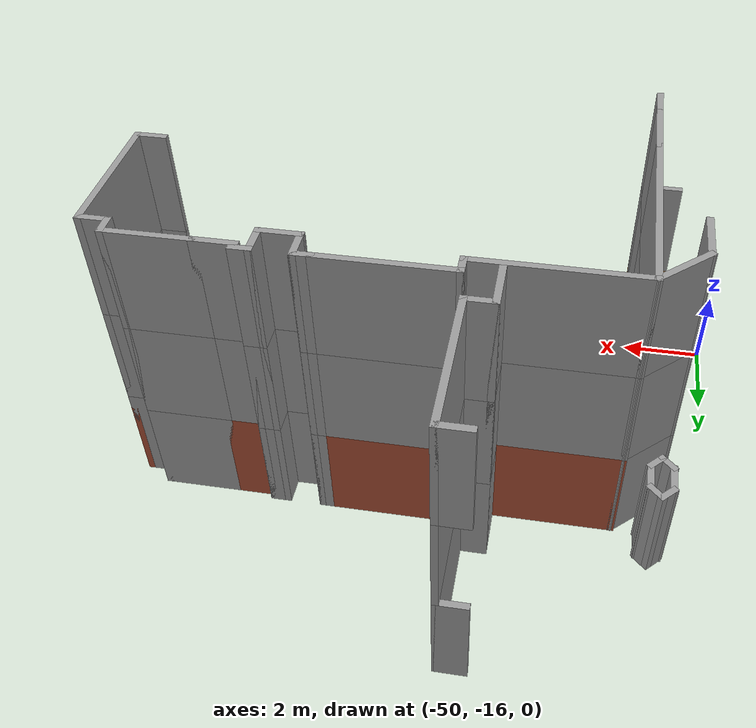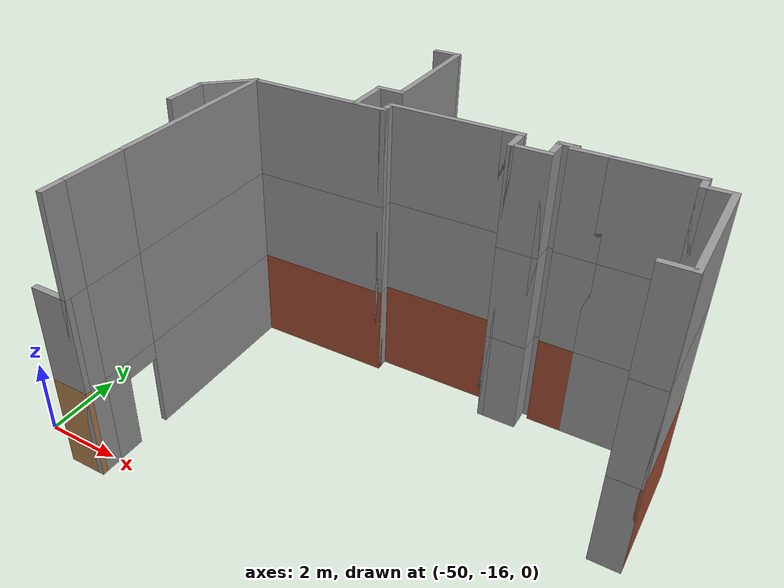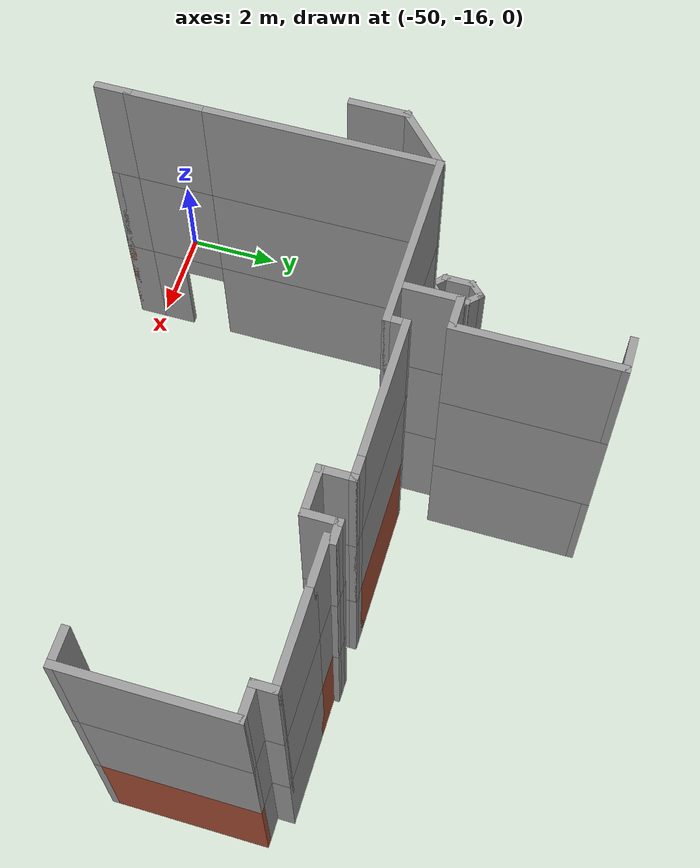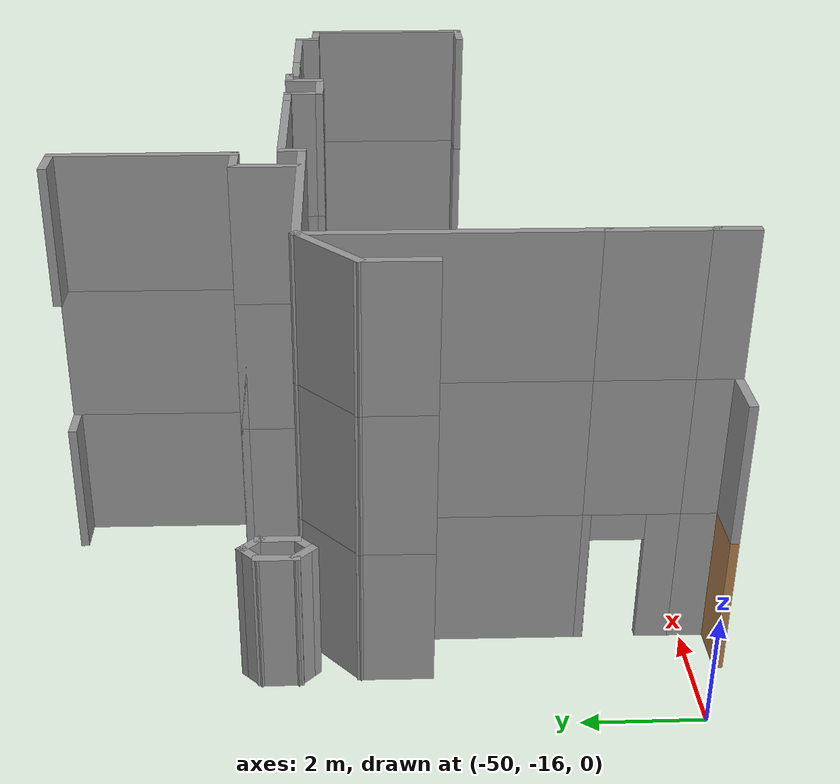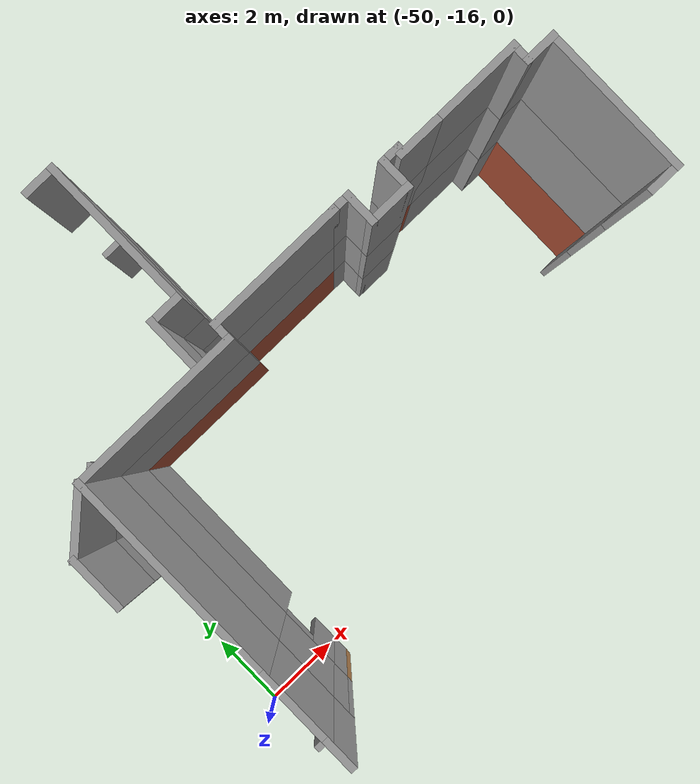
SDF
<sdf version="1.7">
 <model name="mapagazebo">
  <pose>-4.67869 9.01252 0 0 -0 0</pose>
  <link name="Wall_0">
   <collision name="Wall_0_Collision">
    <geometry><box><size>1 0.15 2.5</size></box></geometry>
    <pose>0 0 1.25 0 -0 0</pose>
   </collision>
   <visual name="Wall_0_Visual">
    <pose>0 0 1.25 0 -0 0</pose>
    <geometry><box><size>1 0.15 2.5</size></box></geometry>
    <material>
     <script><uri>file://media/materials/scripts/gazebo.material</uri><name>Gazebo/Bricks</name></script>
     <ambient>1 1 1 1</ambient>
    </material>
    <meta><layer>0</layer></meta>
   </visual>
   <pose>-34.7974 -18.4547 0 0 -0 0</pose>
  </link>
  <link name="Wall_1">
   <collision name="Wall_1_Collision">
    <geometry><box><size>2 0.15 2.5</size></box></geometry>
    <pose>0 0 1.25 0 -0 0</pose>
   </collision>
   <visual name="Wall_1_Visual">
    <pose>0 0 1.25 0 -0 0</pose>
    <geometry><box><size>2 0.15 2.5</size></box></geometry>
    <material>
     <script><uri>file://media/materials/scripts/gazebo.material</uri><name>Gazebo/Grey</name></script>
     <ambient>1 1 1 1</ambient>
    </material>
    <meta><layer>0</layer></meta>
   </visual>
   <pose>-33.4474 -18.4547 0 0 -0 0</pose>
  </link>
  <link name="Wall_138">
   <collision name="Wall_138_Collision">
    <geometry><box><size>1.25 0.15 2.5</size></box></geometry>
    <pose>0 0 1.25 0 -0 0</pose>
   </collision>
   <visual name="Wall_138_Visual">
    <pose>0 0 1.25 0 -0 0</pose>
    <geometry><box><size>1.25 0.15 2.5</size></box></geometry>
    <material>
     <script><uri>file://media/materials/scripts/gazebo.material</uri><name>Gazebo/Grey</name></script>
     <ambient>1 1 1 1</ambient>
    </material>
    <meta><layer>0</layer></meta>
   </visual>
   <pose>-40.3346 -18.1065 0 0 -0 1.5708</pose>
  </link>
  <link name="Wall_139">
   <collision name="Wall_139_Collision">
    <geometry><box><size>0.75 0.15 2.5</size></box></geometry>
    <pose>0 0 1.25 0 -0 0</pose>
   </collision>
   <visual name="Wall_139_Visual">
    <pose>0 0 1.25 0 -0 0</pose>
    <geometry><box><size>0.75 0.15 2.5</size></box></geometry>
    <material>
     <script><uri>file://media/materials/scripts/gazebo.material</uri><name>Gazebo/Grey</name></script>
     <ambient>1 1 1 1</ambient>
    </material>
    <meta><layer>0</layer></meta>
   </visual>
   <pose>-40.0346 -17.5565 0 0 -0 0</pose>
  </link>
  <link name="Wall_1392">
   <collision name="Wall_1392_Collision">
    <geometry><box><size>1 0.15 2.5</size></box></geometry>
    <pose>0 0 1.25 0 -0 0</pose>
   </collision>
   <visual name="Wall_1392_Visual">
    <pose>0 0 1.25 0 -0 0</pose>
    <geometry><box><size>1 0.15 2.5</size></box></geometry>
    <material>
     <script><uri>file://media/materials/scripts/gazebo.material</uri><name>Gazebo/Grey</name></script>
     <ambient>1 1 1 1</ambient>
    </material>
    <meta><layer>2</layer></meta>
   </visual>
   <pose>-34.7974 -18.4547 5 0 -0 0</pose>
  </link>
  <link name="Wall_1393">
   <collision name="Wall_1393_Collision">
    <geometry><box><size>2 0.15 2.5</size></box></geometry>
    <pose>0 0 1.25 0 -0 0</pose>
   </collision>
   <visual name="Wall_1393_Visual">
    <pose>0 0 1.25 0 -0 0</pose>
    <geometry><box><size>2 0.15 2.5</size></box></geometry>
    <material>
     <script><uri>file://media/materials/scripts/gazebo.material</uri><name>Gazebo/Grey</name></script>
     <ambient>1 1 1 1</ambient>
    </material>
    <meta><layer>2</layer></meta>
   </visual>
   <pose>-33.4474 -18.4547 5 0 -0 0</pose>
  </link>
  <link name="Wall_1394">
   <collision name="Wall_1394_Collision">
    <geometry><box><size>0.5 0.15 2.5</size></box></geometry>
    <pose>0 0 1.25 0 -0 0</pose>
   </collision>
   <visual name="Wall_1394_Visual">
    <pose>0 0 1.25 0 -0 0</pose>
    <geometry><box><size>0.5 0.15 2.5</size></box></geometry>
    <material>
     <script><uri>file://media/materials/scripts/gazebo.material</uri><name>Gazebo/Grey</name></script>
     <ambient>1 1 1 1</ambient>
    </material>
    <meta><layer>2</layer></meta>
   </visual>
   <pose>-32.5224 -18.6297 5 0 -0 -1.5708</pose>
  </link>
  <link name="Wall_1395">
   <collision name="Wall_1395_Collision">
    <geometry><box><size>0.75 0.15 2.5</size></box></geometry>
    <pose>0 0 1.25 0 -0 0</pose>
   </collision>
   <visual name="Wall_1395_Visual">
    <pose>0 0 1.25 0 -0 0</pose>
    <geometry><box><size>0.75 0.15 2.5</size></box></geometry>
    <material>
     <script><uri>file://media/materials/scripts/gazebo.material</uri><name>Gazebo/Grey</name></script>
     <ambient>1 1 1 1</ambient>
    </material>
    <meta><layer>2</layer></meta>
   </visual>
   <pose>-32.2224 -18.8047 5 0 -0 0</pose>
  </link>
  <link name="Wall_1396">
   <collision name="Wall_1396_Collision">
    <geometry><box><size>3.25 0.15 2.5</size></box></geometry>
    <pose>0 0 1.25 0 -0 0</pose>
   </collision>
   <visual name="Wall_1396_Visual">
    <pose>0 0 1.25 0 -0 0</pose>
    <geometry><box><size>3.25 0.15 2.5</size></box></geometry>
    <material>
     <script><uri>file://media/materials/scripts/gazebo.material</uri><name>Gazebo/Grey</name></script>
     <ambient>1 1 1 1</ambient>
    </material>
    <meta><layer>2</layer></meta>
   </visual>
   <pose>-31.9224 -20.3547 5 0 -0 -1.5708</pose>
  </link>
  <link name="Wall_1397">
   <collision name="Wall_1397_Collision">
    <geometry><box><size>0.75 0.15 2.5</size></box></geometry>
    <pose>0 0 1.25 0 -0 0</pose>
   </collision>
   <visual name="Wall_1397_Visual">
    <pose>0 0 1.25 0 -0 0</pose>
    <geometry><box><size>0.75 0.15 2.5</size></box></geometry>
    <material>
     <script><uri>file://media/materials/scripts/gazebo.material</uri><name>Gazebo/Grey</name></script>
     <ambient>1 1 1 1</ambient>
    </material>
    <meta><layer>2</layer></meta>
   </visual>
   <pose>-32.2224 -21.9047 5 0 -0 3.14159</pose>
  </link>
  <link name="Wall_140">
   <collision name="Wall_140_Collision">
    <geometry><box><size>3.25 0.15 2.5</size></box></geometry>
    <pose>0 0 1.25 0 -0 0</pose>
   </collision>
   <visual name="Wall_140_Visual">
    <pose>0 0 1.25 0 -0 0</pose>
    <geometry><box><size>3.25 0.15 2.5</size></box></geometry>
    <material>
     <script><uri>file://media/materials/scripts/gazebo.material</uri><name>Gazebo/Grey</name></script>
     <ambient>1 1 1 1</ambient>
    </material>
    <meta><layer>0</layer></meta>
   </visual>
   <pose>-39.7346 -16.0065 0 0 -0 1.5708</pose>
  </link>
  <link name="Wall_1417">
   <collision name="Wall_1417_Collision">
    <geometry><box><size>0.75 0.15 2.5</size></box></geometry>
    <pose>0 0 1.25 0 -0 0</pose>
   </collision>
   <visual name="Wall_1417_Visual">
    <pose>0 0 1.25 0 -0 0</pose>
    <geometry><box><size>0.75 0.15 2.5</size></box></geometry>
    <material>
     <script><uri>file://media/materials/scripts/gazebo.material</uri><name>Gazebo/Grey</name></script>
     <ambient>1 1 1 1</ambient>
    </material>
    <meta><layer>2</layer></meta>
   </visual>
   <pose>-43.1799 -25.1864 5 0 -0 1.5708</pose>
  </link>
  <link name="Wall_1418">
   <collision name="Wall_1418_Collision">
    <geometry><box><size>1.75 0.15 2.5</size></box></geometry>
    <pose>0 0 1.25 0 -0 0</pose>
   </collision>
   <visual name="Wall_1418_Visual">
    <pose>0 0 1.25 0 -0 0</pose>
    <geometry><box><size>1.75 0.15 2.5</size></box></geometry>
    <material>
     <script><uri>file://media/materials/scripts/gazebo.material</uri><name>Gazebo/Grey</name></script>
     <ambient>1 1 1 1</ambient>
    </material>
    <meta><layer>2</layer></meta>
   </visual>
   <pose>-43.1799 -24.0864 5 0 -0 1.5708</pose>
  </link>
  <link name="Wall_1419">
   <collision name="Wall_1419_Collision">
    <geometry><box><size>4.75 0.15 2.5</size></box></geometry>
    <pose>0 0 1.25 0 -0 0</pose>
   </collision>
   <visual name="Wall_1419_Visual">
    <pose>0 0 1.25 0 -0 0</pose>
    <geometry><box><size>4.75 0.15 2.5</size></box></geometry>
    <material>
     <script><uri>file://media/materials/scripts/gazebo.material</uri><name>Gazebo/Grey</name></script>
     <ambient>1 1 1 1</ambient>
    </material>
    <meta><layer>2</layer></meta>
   </visual>
   <pose>-43.1799 -20.9864 5 0 -0 1.5708</pose>
  </link>
  <link name="Wall_1420">
   <collision name="Wall_1420_Collision">
    <geometry><box><size>3.75 0.15 2.5</size></box></geometry>
    <pose>0 0 1.25 0 -0 0</pose>
   </collision>
   <visual name="Wall_1420_Visual">
    <pose>0 0 1.25 0 -0 0</pose>
    <geometry><box><size>3.75 0.15 2.5</size></box></geometry>
    <material>
     <script><uri>file://media/materials/scripts/gazebo.material</uri><name>Gazebo/Grey</name></script>
     <ambient>1 1 1 1</ambient>
    </material>
    <meta><layer>2</layer></meta>
   </visual>
   <pose>-41.3799 -18.6864 5 0 -0 0</pose>
  </link>
  <link name="Wall_1421">
   <collision name="Wall_1421_Collision">
    <geometry><box><size>0.5 0.15 2.5</size></box></geometry>
    <pose>0 0 1.25 0 -0 0</pose>
   </collision>
   <visual name="Wall_1421_Visual">
    <pose>0 0 1.25 0 -0 0</pose>
    <geometry><box><size>0.5 0.15 2.5</size></box></geometry>
    <material>
     <script><uri>file://media/materials/scripts/gazebo.material</uri><name>Gazebo/Grey</name></script>
     <ambient>1 1 1 1</ambient>
    </material>
    <meta><layer>2</layer></meta>
   </visual>
   <pose>-39.5799 -18.5114 5 0 -0 1.5708</pose>
  </link>
  <link name="Wall_1422">
   <collision name="Wall_1422_Collision">
    <geometry><box><size>3 0.15 2.5</size></box></geometry>
    <pose>0 0 1.25 0 -0 0</pose>
   </collision>
   <visual name="Wall_1422_Visual">
    <pose>0 0 1.25 0 -0 0</pose>
    <geometry><box><size>3 0.15 2.5</size></box></geometry>
    <material>
     <script><uri>file://media/materials/scripts/gazebo.material</uri><name>Gazebo/Grey</name></script>
     <ambient>1 1 1 1</ambient>
    </material>
    <meta><layer>2</layer></meta>
   </visual>
   <pose>-38.1549 -18.3364 5 0 -0 0</pose>
  </link>
  <link name="Wall_1423">
   <collision name="Wall_1423_Collision">
    <geometry><box><size>0.5 0.15 2.5</size></box></geometry>
    <pose>0 0 1.25 0 -0 0</pose>
   </collision>
   <visual name="Wall_1423_Visual">
    <pose>0 0 1.25 0 -0 0</pose>
    <geometry><box><size>0.5 0.15 2.5</size></box></geometry>
    <material>
     <script><uri>file://media/materials/scripts/gazebo.material</uri><name>Gazebo/Grey</name></script>
     <ambient>1 1 1 1</ambient>
    </material>
    <meta><layer>2</layer></meta>
   </visual>
   <pose>-36.5549 -18.3364 5 0 -0 0</pose>
  </link>
  <link name="Wall_1424">
   <collision name="Wall_1424_Collision">
    <geometry><box><size>0.75 0.15 2.5</size></box></geometry>
    <pose>0 0 1.25 0 -0 0</pose>
   </collision>
   <visual name="Wall_1424_Visual">
    <pose>0 0 1.25 0 -0 0</pose>
    <geometry><box><size>0.75 0.15 2.5</size></box></geometry>
    <material>
     <script><uri>file://media/materials/scripts/gazebo.material</uri><name>Gazebo/Grey</name></script>
     <ambient>1 1 1 1</ambient>
    </material>
    <meta><layer>2</layer></meta>
   </visual>
   <pose>-36.3799 -18.6364 5 0 -0 -1.5708</pose>
  </link>
  <link name="Wall_1425">
   <collision name="Wall_1425_Collision">
    <geometry><box><size>1 0.15 2.5</size></box></geometry>
    <pose>0 0 1.25 0 -0 0</pose>
   </collision>
   <visual name="Wall_1425_Visual">
    <pose>0 0 1.25 0 -0 0</pose>
    <geometry><box><size>1 0.15 2.5</size></box></geometry>
    <material>
     <script><uri>file://media/materials/scripts/gazebo.material</uri><name>Gazebo/Grey</name></script>
     <ambient>1 1 1 1</ambient>
    </material>
    <meta><layer>2</layer></meta>
   </visual>
   <pose>-35.9549 -18.9364 5 0 -0 0</pose>
  </link>
  <link name="Wall_1426">
   <collision name="Wall_1426_Collision">
    <geometry><box><size>0.75 0.15 2.5</size></box></geometry>
    <pose>0 0 1.25 0 -0 0</pose>
   </collision>
   <visual name="Wall_1426_Visual">
    <pose>0 0 1.25 0 -0 0</pose>
    <geometry><box><size>0.75 0.15 2.5</size></box></geometry>
    <material>
     <script><uri>file://media/materials/scripts/gazebo.material</uri><name>Gazebo/Grey</name></script>
     <ambient>1 1 1 1</ambient>
    </material>
    <meta><layer>2</layer></meta>
   </visual>
   <pose>-35.5299 -18.6364 5 0 -0 1.5708</pose>
  </link>
  <link name="Wall_1427">
   <collision name="Wall_1427_Collision">
    <geometry><box><size>0.5 0.15 2.5</size></box></geometry>
    <pose>0 0 1.25 0 -0 0</pose>
   </collision>
   <visual name="Wall_1427_Visual">
    <pose>0 0 1.25 0 -0 0</pose>
    <geometry><box><size>0.5 0.15 2.5</size></box></geometry>
    <material>
     <script><uri>file://media/materials/scripts/gazebo.material</uri><name>Gazebo/Grey</name></script>
     <ambient>1 1 1 1</ambient>
    </material>
    <meta><layer>2</layer></meta>
   </visual>
   <pose>-35.3549 -18.3364 5 0 -0 0</pose>
  </link>
  <link name="Wall_1428">
   <collision name="Wall_1428_Collision">
    <geometry><box><size>0.15 0.15 2.5</size></box></geometry>
    <pose>0 0 1.25 0 -0 0</pose>
   </collision>
   <visual name="Wall_1428_Visual">
    <pose>0 0 1.25 0 -0 0</pose>
    <geometry><box><size>0.15 0.15 2.5</size></box></geometry>
    <material>
     <script><uri>file://media/materials/scripts/gazebo.material</uri><name>Gazebo/Grey</name></script>
     <ambient>1 1 1 1</ambient>
    </material>
    <meta><layer>2</layer></meta>
   </visual>
   <pose>-35.1799 -18.3364 5 0 -0 0</pose>
  </link>
  <link name="Wall_143">
   <collision name="Wall_143_Collision">
    <geometry><box><size>0.75 0.15 2.5</size></box></geometry>
    <pose>0 0 1.25 0 -0 0</pose>
   </collision>
   <visual name="Wall_143_Visual">
    <pose>0 0 1.25 0 -0 0</pose>
    <geometry><box><size>0.75 0.15 2.5</size></box></geometry>
    <material>
     <script><uri>file://media/materials/scripts/gazebo.material</uri><name>Gazebo/Grey</name></script>
     <ambient>1 1 1 1</ambient>
    </material>
    <meta><layer>0</layer></meta>
   </visual>
   <pose>-40.0346 -14.4565 0 0 -0 3.14159</pose>
  </link>
  <link name="Wall_1432">
   <collision name="Wall_1432_Collision">
    <geometry><box><size>1.25 0.15 2.5</size></box></geometry>
    <pose>0 0 1.25 0 -0 0</pose>
   </collision>
   <visual name="Wall_1432_Visual">
    <pose>0 0 1.25 0 -0 0</pose>
    <geometry><box><size>1.25 0.15 2.5</size></box></geometry>
    <material>
     <script><uri>file://media/materials/scripts/gazebo.material</uri><name>Gazebo/Grey</name></script>
     <ambient>1 1 1 1</ambient>
    </material>
    <meta><layer>2</layer></meta>
   </visual>
   <pose>-44.1623 -20.1413 5 0 -0 1.5708</pose>
  </link>
  <link name="Wall_1433">
   <collision name="Wall_1433_Collision">
    <geometry><box><size>1.48568 0.15 2.5</size></box></geometry>
    <pose>0 0 1.25 0 -0 0</pose>
   </collision>
   <visual name="Wall_1433_Visual">
    <pose>0 0 1.25 0 -0 0</pose>
    <geometry><box><size>1.48568 0.15 2.5</size></box></geometry>
    <material>
     <script><uri>file://media/materials/scripts/gazebo.material</uri><name>Gazebo/Grey</name></script>
     <ambient>1 1 1 1</ambient>
    </material>
    <meta><layer>2</layer></meta>
   </visual>
   <pose>-43.6711 -19.1389 5 0 -0 0.744352</pose>
  </link>
  <link name="Wall_1502">
   <collision name="Wall_1502_Collision">
    <geometry><box><size>1.25 0.15 2.5</size></box></geometry>
    <pose>0 0 1.25 0 -0 0</pose>
   </collision>
   <visual name="Wall_1502_Visual">
    <pose>0 0 1.25 0 -0 0</pose>
    <geometry><box><size>1.25 0.15 2.5</size></box></geometry>
    <material>
     <script><uri>file://media/materials/scripts/gazebo.material</uri><name>Gazebo/Grey</name></script>
     <ambient>1 1 1 1</ambient>
    </material>
    <meta><layer>2</layer></meta>
   </visual>
   <pose>-40.3346 -18.1065 5 0 -0 1.5708</pose>
  </link>
  <link name="Wall_1503">
   <collision name="Wall_1503_Collision">
    <geometry><box><size>0.75 0.15 2.5</size></box></geometry>
    <pose>0 0 1.25 0 -0 0</pose>
   </collision>
   <visual name="Wall_1503_Visual">
    <pose>0 0 1.25 0 -0 0</pose>
    <geometry><box><size>0.75 0.15 2.5</size></box></geometry>
    <material>
     <script><uri>file://media/materials/scripts/gazebo.material</uri><name>Gazebo/Grey</name></script>
     <ambient>1 1 1 1</ambient>
    </material>
    <meta><layer>2</layer></meta>
   </visual>
   <pose>-40.0346 -17.5565 5 0 -0 0</pose>
  </link>
  <link name="Wall_1504">
   <collision name="Wall_1504_Collision">
    <geometry><box><size>3.25 0.15 2.5</size></box></geometry>
    <pose>0 0 1.25 0 -0 0</pose>
   </collision>
   <visual name="Wall_1504_Visual">
    <pose>0 0 1.25 0 -0 0</pose>
    <geometry><box><size>3.25 0.15 2.5</size></box></geometry>
    <material>
     <script><uri>file://media/materials/scripts/gazebo.material</uri><name>Gazebo/Grey</name></script>
     <ambient>1 1 1 1</ambient>
    </material>
    <meta><layer>2</layer></meta>
   </visual>
   <pose>-39.7346 -16.0065 5 0 -0 1.5708</pose>
  </link>
  <link name="Wall_1505">
   <collision name="Wall_1505_Collision">
    <geometry><box><size>0.75 0.15 2.5</size></box></geometry>
    <pose>0 0 1.25 0 -0 0</pose>
   </collision>
   <visual name="Wall_1505_Visual">
    <pose>0 0 1.25 0 -0 0</pose>
    <geometry><box><size>0.75 0.15 2.5</size></box></geometry>
    <material>
     <script><uri>file://media/materials/scripts/gazebo.material</uri><name>Gazebo/Grey</name></script>
     <ambient>1 1 1 1</ambient>
    </material>
    <meta><layer>2</layer></meta>
   </visual>
   <pose>-40.0346 -14.4565 5 0 -0 3.14159</pose>
  </link>
  <link name="Wall_2">
   <collision name="Wall_2_Collision">
    <geometry><box><size>0.5 0.15 2.5</size></box></geometry>
    <pose>0 0 1.25 0 -0 0</pose>
   </collision>
   <visual name="Wall_2_Visual">
    <pose>0 0 1.25 0 -0 0</pose>
    <geometry><box><size>0.5 0.15 2.5</size></box></geometry>
    <material>
     <script><uri>file://media/materials/scripts/gazebo.material</uri><name>Gazebo/Grey</name></script>
     <ambient>1 1 1 1</ambient>
    </material>
    <meta><layer>0</layer></meta>
   </visual>
   <pose>-32.5224 -18.6297 0 0 -0 -1.5708</pose>
  </link>
  <link name="Wall_2169">
   <collision name="Wall_2169_Collision">
    <geometry><box><size>0.75 0.15 2.5</size></box></geometry>
    <pose>0 0 1.25 0 -0 0</pose>
   </collision>
   <visual name="Wall_2169_Visual">
    <pose>0 0 1.25 0 -0 0</pose>
    <geometry><box><size>0.75 0.15 2.5</size></box></geometry>
    <material>
     <script><uri>file://media/materials/scripts/gazebo.material</uri><name>Gazebo/Grey</name></script>
     <ambient>1 1 1 1</ambient>
    </material>
    <meta><layer>0</layer></meta>
   </visual>
   <pose>-44.2676 -18.2769 0 0 -0 1.5708</pose>
  </link>
  <link name="Wall_2170">
   <collision name="Wall_2170_Collision">
    <geometry><box><size>0.5 0.15 2.5</size></box></geometry>
    <pose>0 0 1.25 0 -0 0</pose>
   </collision>
   <visual name="Wall_2170_Visual">
    <pose>0 0 1.25 0 -0 0</pose>
    <geometry><box><size>0.5 0.15 2.5</size></box></geometry>
    <material>
     <script><uri>file://media/materials/scripts/gazebo.material</uri><name>Gazebo/Grey</name></script>
     <ambient>1 1 1 1</ambient>
    </material>
    <meta><layer>0</layer></meta>
   </visual>
   <pose>-44.1438 -17.8532 0 0 -0 0.785398</pose>
  </link>
  <link name="Wall_2171">
   <collision name="Wall_2171_Collision">
    <geometry><box><size>0.5 0.15 2.5</size></box></geometry>
    <pose>0 0 1.25 0 -0 0</pose>
   </collision>
   <visual name="Wall_2171_Visual">
    <pose>0 0 1.25 0 -0 0</pose>
    <geometry><box><size>0.5 0.15 2.5</size></box></geometry>
    <material>
     <script><uri>file://media/materials/scripts/gazebo.material</uri><name>Gazebo/Grey</name></script>
     <ambient>1 1 1 1</ambient>
    </material>
    <meta><layer>0</layer></meta>
   </visual>
   <pose>-43.8964 -17.8532 0 0 -0 -0.785398</pose>
  </link>
  <link name="Wall_2172">
   <collision name="Wall_2172_Collision">
    <geometry><box><size>0.75 0.15 2.5</size></box></geometry>
    <pose>0 0 1.25 0 -0 0</pose>
   </collision>
   <visual name="Wall_2172_Visual">
    <pose>0 0 1.25 0 -0 0</pose>
    <geometry><box><size>0.75 0.15 2.5</size></box></geometry>
    <material>
     <script><uri>file://media/materials/scripts/gazebo.material</uri><name>Gazebo/Grey</name></script>
     <ambient>1 1 1 1</ambient>
    </material>
    <meta><layer>0</layer></meta>
   </visual>
   <pose>-43.7726 -18.2769 0 0 -0 -1.5708</pose>
  </link>
  <link name="Wall_2173">
   <collision name="Wall_2173_Collision">
    <geometry><box><size>0.5 0.15 2.5</size></box></geometry>
    <pose>0 0 1.25 0 -0 0</pose>
   </collision>
   <visual name="Wall_2173_Visual">
    <pose>0 0 1.25 0 -0 0</pose>
    <geometry><box><size>0.5 0.15 2.5</size></box></geometry>
    <material>
     <script><uri>file://media/materials/scripts/gazebo.material</uri><name>Gazebo/Grey</name></script>
     <ambient>1 1 1 1</ambient>
    </material>
    <meta><layer>0</layer></meta>
   </visual>
   <pose>-43.8964 -18.7006 0 0 -0 -2.35619</pose>
  </link>
  <link name="Wall_2174">
   <collision name="Wall_2174_Collision">
    <geometry><box><size>0.5 0.15 2.5</size></box></geometry>
    <pose>0 0 1.25 0 -0 0</pose>
   </collision>
   <visual name="Wall_2174_Visual">
    <pose>0 0 1.25 0 -0 0</pose>
    <geometry><box><size>0.5 0.15 2.5</size></box></geometry>
    <material>
     <script><uri>file://media/materials/scripts/gazebo.material</uri><name>Gazebo/Grey</name></script>
     <ambient>1 1 1 1</ambient>
    </material>
    <meta><layer>0</layer></meta>
   </visual>
   <pose>-44.1438 -18.7006 0 0 -0 2.35619</pose>
  </link>
  <link name="Wall_27">
   <collision name="Wall_27_Collision">
    <geometry><box><size>1 0.15 2.5</size></box></geometry>
    <pose>0 0 1.25 0 -0 0</pose>
   </collision>
   <visual name="Wall_27_Visual">
    <pose>0 0 1.25 0 -0 0</pose>
    <geometry><box><size>1 0.15 2.5</size></box></geometry>
    <material>
     <script><uri>file://media/materials/scripts/gazebo.material</uri><name>Gazebo/Wood</name></script>
     <ambient>1 1 1 1</ambient>
    </material>
    <meta><layer>0</layer></meta>
   </visual>
   <pose>-43.6049 -25.4864 0 0 -0 0</pose>
  </link>
  <link name="Wall_28">
   <collision name="Wall_28_Collision">
    <geometry><box><size>0.75 0.15 2.5</size></box></geometry>
    <pose>0 0 1.25 0 -0 0</pose>
   </collision>
   <visual name="Wall_28_Visual">
    <pose>0 0 1.25 0 -0 0</pose>
    <geometry><box><size>0.75 0.15 2.5</size></box></geometry>
    <material>
     <script><uri>file://media/materials/scripts/gazebo.material</uri><name>Gazebo/Grey</name></script>
     <ambient>1 1 1 1</ambient>
    </material>
    <meta><layer>0</layer></meta>
   </visual>
   <pose>-43.1799 -25.1864 0 0 -0 1.5708</pose>
  </link>
  <link name="Wall_29">
   <pose>-43.1799 -24.0864 0 0 -0 1.5708</pose>
   <visual name="Wall_29_Visual_0">
    <pose>-0.521421 0 1.25 0 -0 0</pose>
    <geometry><box><size>0.707158 0.15 2.5</size></box></geometry>
    <material>
     <script><uri>file://media/materials/scripts/gazebo.material</uri><name>Gazebo/Grey</name></script>
     <ambient>1 1 1 1</ambient>
    </material>
    <meta><layer>0</layer></meta>
   </visual>
   <collision name="Wall_29_Collision_0">
    <geometry><box><size>0.707158 0.15 2.5</size></box></geometry>
    <pose>-0.521421 0 1.25 0 -0 0</pose>
   </collision>
   <visual name="Wall_29_Visual_1">
    <pose>-0.168451 0 1.25 0 -0 0</pose>
    <geometry><box><size>0.001217 0.15 2.5</size></box></geometry>
    <material>
     <script><uri>file://media/materials/scripts/gazebo.material</uri><name>Gazebo/Grey</name></script>
     <ambient>1 1 1 1</ambient>
    </material>
    <meta><layer>0</layer></meta>
   </visual>
   <collision name="Wall_29_Collision_1">
    <geometry><box><size>0.001217 0.15 2.5</size></box></geometry>
    <pose>-0.168451 0 1.25 0 -0 0</pose>
   </collision>
   <visual name="Wall_29_Visual_2">
    <pose>0.803579 0 1.25 0 -0 0</pose>
    <geometry><box><size>0.142842 0.15 2.5</size></box></geometry>
    <material>
     <script><uri>file://media/materials/scripts/gazebo.material</uri><name>Gazebo/Grey</name></script>
     <ambient>1 1 1 1</ambient>
    </material>
    <meta><layer>0</layer></meta>
   </visual>
   <collision name="Wall_29_Collision_2">
    <geometry><box><size>0.142842 0.15 2.5</size></box></geometry>
    <pose>0.803579 0 1.25 0 -0 0</pose>
   </collision>
   <visual name="Wall_29_Visual_3">
    <pose>0.282158 0 2.25 0 -0 0</pose>
    <geometry><box><size>0.9 0.15 0.5</size></box></geometry>
    <material>
     <script><uri>file://media/materials/scripts/gazebo.material</uri><name>Gazebo/Grey</name></script>
     <ambient>1 1 1 1</ambient>
    </material>
    <meta><layer>0</layer></meta>
   </visual>
   <collision name="Wall_29_Collision_3">
    <geometry><box><size>0.9 0.15 0.5</size></box></geometry>
    <pose>0.282158 0 2.25 0 -0 0</pose>
   </collision>
   <visual name="Wall_29_Visual_4">
    <pose>0.282158 0 2.25 0 -0 0</pose>
    <geometry><box><size>0.9 0.15 0.5</size></box></geometry>
    <material>
     <script><uri>file://media/materials/scripts/gazebo.material</uri><name>Gazebo/Grey</name></script>
     <ambient>1 1 1 1</ambient>
    </material>
    <meta><layer>0</layer></meta>
   </visual>
   <collision name="Wall_29_Collision_4">
    <geometry><box><size>0.9 0.15 0.5</size></box></geometry>
    <pose>0.282158 0 2.25 0 -0 0</pose>
   </collision>
  </link>
  <link name="Wall_3">
   <collision name="Wall_3_Collision">
    <geometry><box><size>0.75 0.15 2.5</size></box></geometry>
    <pose>0 0 1.25 0 -0 0</pose>
   </collision>
   <visual name="Wall_3_Visual">
    <pose>0 0 1.25 0 -0 0</pose>
    <geometry><box><size>0.75 0.15 2.5</size></box></geometry>
    <material>
     <script><uri>file://media/materials/scripts/gazebo.material</uri><name>Gazebo/Grey</name></script>
     <ambient>1 1 1 1</ambient>
    </material>
    <meta><layer>0</layer></meta>
   </visual>
   <pose>-32.2224 -18.8047 0 0 -0 0</pose>
  </link>
  <link name="Wall_30">
   <collision name="Wall_30_Collision">
    <geometry><box><size>4.75 0.15 2.5</size></box></geometry>
    <pose>0 0 1.25 0 -0 0</pose>
   </collision>
   <visual name="Wall_30_Visual">
    <pose>0 0 1.25 0 -0 0</pose>
    <geometry><box><size>4.75 0.15 2.5</size></box></geometry>
    <material>
     <script><uri>file://media/materials/scripts/gazebo.material</uri><name>Gazebo/Grey</name></script>
     <ambient>1 1 1 1</ambient>
    </material>
    <meta><layer>0</layer></meta>
   </visual>
   <pose>-43.1799 -20.9864 0 0 -0 1.5708</pose>
  </link>
  <link name="Wall_32">
   <collision name="Wall_32_Collision">
    <geometry><box><size>3.75 0.15 2.5</size></box></geometry>
    <pose>0 0 1.25 0 -0 0</pose>
   </collision>
   <visual name="Wall_32_Visual">
    <pose>0 0 1.25 0 -0 0</pose>
    <geometry><box><size>3.75 0.15 2.5</size></box></geometry>
    <material>
     <script><uri>file://media/materials/scripts/gazebo.material</uri><name>Gazebo/Bricks</name></script>
     <ambient>1 1 1 1</ambient>
    </material>
    <meta><layer>0</layer></meta>
   </visual>
   <pose>-41.3799 -18.6864 0 0 -0 0</pose>
  </link>
  <link name="Wall_33">
   <collision name="Wall_33_Collision">
    <geometry><box><size>0.5 0.15 2.5</size></box></geometry>
    <pose>0 0 1.25 0 -0 0</pose>
   </collision>
   <visual name="Wall_33_Visual">
    <pose>0 0 1.25 0 -0 0</pose>
    <geometry><box><size>0.5 0.15 2.5</size></box></geometry>
    <material>
     <script><uri>file://media/materials/scripts/gazebo.material</uri><name>Gazebo/Grey</name></script>
     <ambient>1 1 1 1</ambient>
    </material>
    <meta><layer>0</layer></meta>
   </visual>
   <pose>-39.5799 -18.5114 0 0 -0 1.5708</pose>
  </link>
  <link name="Wall_34">
   <collision name="Wall_34_Collision">
    <geometry><box><size>3 0.15 2.5</size></box></geometry>
    <pose>0 0 1.25 0 -0 0</pose>
   </collision>
   <visual name="Wall_34_Visual">
    <pose>0 0 1.25 0 -0 0</pose>
    <geometry><box><size>3 0.15 2.5</size></box></geometry>
    <material>
     <script><uri>file://media/materials/scripts/gazebo.material</uri><name>Gazebo/Bricks</name></script>
     <ambient>1 1 1 1</ambient>
    </material>
    <meta><layer>0</layer></meta>
   </visual>
   <pose>-38.1549 -18.3364 0 0 -0 0</pose>
  </link>
  <link name="Wall_35">
   <collision name="Wall_35_Collision">
    <geometry><box><size>0.5 0.15 2.5</size></box></geometry>
    <pose>0 0 1.25 0 -0 0</pose>
   </collision>
   <visual name="Wall_35_Visual">
    <pose>0 0 1.25 0 -0 0</pose>
    <geometry><box><size>0.5 0.15 2.5</size></box></geometry>
    <material>
     <script><uri>file://media/materials/scripts/gazebo.material</uri><name>Gazebo/Grey</name></script>
     <ambient>1 1 1 1</ambient>
    </material>
    <meta><layer>0</layer></meta>
   </visual>
   <pose>-36.5549 -18.3364 0 0 -0 0</pose>
  </link>
  <link name="Wall_36">
   <collision name="Wall_36_Collision">
    <geometry><box><size>0.75 0.15 2.5</size></box></geometry>
    <pose>0 0 1.25 0 -0 0</pose>
   </collision>
   <visual name="Wall_36_Visual">
    <pose>0 0 1.25 0 -0 0</pose>
    <geometry><box><size>0.75 0.15 2.5</size></box></geometry>
    <material>
     <script><uri>file://media/materials/scripts/gazebo.material</uri><name>Gazebo/Grey</name></script>
     <ambient>1 1 1 1</ambient>
    </material>
    <meta><layer>0</layer></meta>
   </visual>
   <pose>-36.3799 -18.6364 0 0 -0 -1.5708</pose>
  </link>
  <link name="Wall_37">
   <collision name="Wall_37_Collision">
    <geometry><box><size>1 0.15 2.5</size></box></geometry>
    <pose>0 0 1.25 0 -0 0</pose>
   </collision>
   <visual name="Wall_37_Visual">
    <pose>0 0 1.25 0 -0 0</pose>
    <geometry><box><size>1 0.15 2.5</size></box></geometry>
    <material>
     <script><uri>file://media/materials/scripts/gazebo.material</uri><name>Gazebo/Grey</name></script>
     <ambient>1 1 1 1</ambient>
    </material>
    <meta><layer>0</layer></meta>
   </visual>
   <pose>-35.9549 -18.9364 0 0 -0 0</pose>
  </link>
  <link name="Wall_38">
   <collision name="Wall_38_Collision">
    <geometry><box><size>0.75 0.15 2.5</size></box></geometry>
    <pose>0 0 1.25 0 -0 0</pose>
   </collision>
   <visual name="Wall_38_Visual">
    <pose>0 0 1.25 0 -0 0</pose>
    <geometry><box><size>0.75 0.15 2.5</size></box></geometry>
    <material>
     <script><uri>file://media/materials/scripts/gazebo.material</uri><name>Gazebo/Grey</name></script>
     <ambient>1 1 1 1</ambient>
    </material>
    <meta><layer>0</layer></meta>
   </visual>
   <pose>-35.5299 -18.6364 0 0 -0 1.5708</pose>
  </link>
  <link name="Wall_39">
   <collision name="Wall_39_Collision">
    <geometry><box><size>0.5 0.15 2.5</size></box></geometry>
    <pose>0 0 1.25 0 -0 0</pose>
   </collision>
   <visual name="Wall_39_Visual">
    <pose>0 0 1.25 0 -0 0</pose>
    <geometry><box><size>0.5 0.15 2.5</size></box></geometry>
    <material>
     <script><uri>file://media/materials/scripts/gazebo.material</uri><name>Gazebo/Grey</name></script>
     <ambient>1 1 1 1</ambient>
    </material>
    <meta><layer>0</layer></meta>
   </visual>
   <pose>-35.3549 -18.3364 0 0 -0 0</pose>
  </link>
  <link name="Wall_4">
   <collision name="Wall_4_Collision">
    <geometry><box><size>3.25 0.15 2.5</size></box></geometry>
    <pose>0 0 1.25 0 -0 0</pose>
   </collision>
   <visual name="Wall_4_Visual">
    <pose>0 0 1.25 0 -0 0</pose>
    <geometry><box><size>3.25 0.15 2.5</size></box></geometry>
    <material>
     <script><uri>file://media/materials/scripts/gazebo.material</uri><name>Gazebo/Bricks</name></script>
     <ambient>1 1 1 1</ambient>
    </material>
    <meta><layer>0</layer></meta>
   </visual>
   <pose>-31.9224 -20.3547 0 0 -0 -1.5708</pose>
  </link>
  <link name="Wall_40">
   <collision name="Wall_40_Collision">
    <geometry><box><size>0.15 0.15 2.5</size></box></geometry>
    <pose>0 0 1.25 0 -0 0</pose>
   </collision>
   <visual name="Wall_40_Visual">
    <pose>0 0 1.25 0 -0 0</pose>
    <geometry><box><size>0.15 0.15 2.5</size></box></geometry>
    <material>
     <script><uri>file://media/materials/scripts/gazebo.material</uri><name>Gazebo/Grey</name></script>
     <ambient>1 1 1 1</ambient>
    </material>
    <meta><layer>0</layer></meta>
   </visual>
   <pose>-35.1799 -18.3364 0 0 -0 0</pose>
  </link>
  <link name="Wall_47">
   <collision name="Wall_47_Collision">
    <geometry><box><size>1.25 0.15 2.5</size></box></geometry>
    <pose>0 0 1.25 0 -0 0</pose>
   </collision>
   <visual name="Wall_47_Visual">
    <pose>0 0 1.25 0 -0 0</pose>
    <geometry><box><size>1.25 0.15 2.5</size></box></geometry>
    <material>
     <script><uri>file://media/materials/scripts/gazebo.material</uri><name>Gazebo/Grey</name></script>
     <ambient>1 1 1 1</ambient>
    </material>
    <meta><layer>0</layer></meta>
   </visual>
   <pose>-44.1623 -20.1413 0 0 -0 1.5708</pose>
  </link>
  <link name="Wall_48">
   <collision name="Wall_48_Collision">
    <geometry><box><size>1.48568 0.15 2.5</size></box></geometry>
    <pose>0 0 1.25 0 -0 0</pose>
   </collision>
   <visual name="Wall_48_Visual">
    <pose>0 0 1.25 0 -0 0</pose>
    <geometry><box><size>1.48568 0.15 2.5</size></box></geometry>
    <material>
     <script><uri>file://media/materials/scripts/gazebo.material</uri><name>Gazebo/Grey</name></script>
     <ambient>1 1 1 1</ambient>
    </material>
    <meta><layer>0</layer></meta>
   </visual>
   <pose>-43.6711 -19.1389 0 0 -0 0.744352</pose>
  </link>
  <link name="Wall_5">
   <collision name="Wall_5_Collision">
    <geometry><box><size>0.75 0.15 2.5</size></box></geometry>
    <pose>0 0 1.25 0 -0 0</pose>
   </collision>
   <visual name="Wall_5_Visual">
    <pose>0 0 1.25 0 -0 0</pose>
    <geometry><box><size>0.75 0.15 2.5</size></box></geometry>
    <material>
     <script><uri>file://media/materials/scripts/gazebo.material</uri><name>Gazebo/Grey</name></script>
     <ambient>1 1 1 1</ambient>
    </material>
    <meta><layer>0</layer></meta>
   </visual>
   <pose>-32.2224 -21.9047 0 0 -0 3.14159</pose>
  </link>
  <link name="Wall_768">
   <collision name="Wall_768_Collision">
    <geometry><box><size>1 0.15 2.5</size></box></geometry>
    <pose>0 0 1.25 0 -0 0</pose>
   </collision>
   <visual name="Wall_768_Visual">
    <pose>0 0 1.25 0 -0 0</pose>
    <geometry><box><size>1 0.15 2.5</size></box></geometry>
    <material>
     <script><uri>file://media/materials/scripts/gazebo.material</uri><name>Gazebo/Grey</name></script>
     <ambient>1 1 1 1</ambient>
    </material>
    <meta><layer>1</layer></meta>
   </visual>
   <pose>-34.7974 -18.4547 2.5 0 -0 0</pose>
  </link>
  <link name="Wall_769">
   <collision name="Wall_769_Collision">
    <geometry><box><size>2 0.15 2.5</size></box></geometry>
    <pose>0 0 1.25 0 -0 0</pose>
   </collision>
   <visual name="Wall_769_Visual">
    <pose>0 0 1.25 0 -0 0</pose>
    <geometry><box><size>2 0.15 2.5</size></box></geometry>
    <material>
     <script><uri>file://media/materials/scripts/gazebo.material</uri><name>Gazebo/Grey</name></script>
     <ambient>1 1 1 1</ambient>
    </material>
    <meta><layer>1</layer></meta>
   </visual>
   <pose>-33.4474 -18.4547 2.5 0 -0 0</pose>
  </link>
  <link name="Wall_770">
   <collision name="Wall_770_Collision">
    <geometry><box><size>0.5 0.15 2.5</size></box></geometry>
    <pose>0 0 1.25 0 -0 0</pose>
   </collision>
   <visual name="Wall_770_Visual">
    <pose>0 0 1.25 0 -0 0</pose>
    <geometry><box><size>0.5 0.15 2.5</size></box></geometry>
    <material>
     <script><uri>file://media/materials/scripts/gazebo.material</uri><name>Gazebo/Grey</name></script>
     <ambient>1 1 1 1</ambient>
    </material>
    <meta><layer>1</layer></meta>
   </visual>
   <pose>-32.5224 -18.6297 2.5 0 -0 -1.5708</pose>
  </link>
  <link name="Wall_771">
   <collision name="Wall_771_Collision">
    <geometry><box><size>0.75 0.15 2.5</size></box></geometry>
    <pose>0 0 1.25 0 -0 0</pose>
   </collision>
   <visual name="Wall_771_Visual">
    <pose>0 0 1.25 0 -0 0</pose>
    <geometry><box><size>0.75 0.15 2.5</size></box></geometry>
    <material>
     <script><uri>file://media/materials/scripts/gazebo.material</uri><name>Gazebo/Grey</name></script>
     <ambient>1 1 1 1</ambient>
    </material>
    <meta><layer>1</layer></meta>
   </visual>
   <pose>-32.2224 -18.8047 2.5 0 -0 0</pose>
  </link>
  <link name="Wall_772">
   <collision name="Wall_772_Collision">
    <geometry><box><size>3.25 0.15 2.5</size></box></geometry>
    <pose>0 0 1.25 0 -0 0</pose>
   </collision>
   <visual name="Wall_772_Visual">
    <pose>0 0 1.25 0 -0 0</pose>
    <geometry><box><size>3.25 0.15 2.5</size></box></geometry>
    <material>
     <script><uri>file://media/materials/scripts/gazebo.material</uri><name>Gazebo/Grey</name></script>
     <ambient>1 1 1 1</ambient>
    </material>
    <meta><layer>1</layer></meta>
   </visual>
   <pose>-31.9224 -20.3547 2.5 0 -0 -1.5708</pose>
  </link>
  <link name="Wall_773">
   <collision name="Wall_773_Collision">
    <geometry><box><size>0.75 0.15 2.5</size></box></geometry>
    <pose>0 0 1.25 0 -0 0</pose>
   </collision>
   <visual name="Wall_773_Visual">
    <pose>0 0 1.25 0 -0 0</pose>
    <geometry><box><size>0.75 0.15 2.5</size></box></geometry>
    <material>
     <script><uri>file://media/materials/scripts/gazebo.material</uri><name>Gazebo/Grey</name></script>
     <ambient>1 1 1 1</ambient>
    </material>
    <meta><layer>1</layer></meta>
   </visual>
   <pose>-32.2224 -21.9047 2.5 0 -0 3.14159</pose>
  </link>
  <link name="Wall_792">
   <collision name="Wall_792_Collision">
    <geometry><box><size>1 0.15 2.5</size></box></geometry>
    <pose>0 0 1.25 0 -0 0</pose>
   </collision>
   <visual name="Wall_792_Visual">
    <pose>0 0 1.25 0 -0 0</pose>
    <geometry><box><size>1 0.15 2.5</size></box></geometry>
    <material>
     <script><uri>file://media/materials/scripts/gazebo.material</uri><name>Gazebo/Grey</name></script>
     <ambient>1 1 1 1</ambient>
    </material>
    <meta><layer>1</layer></meta>
   </visual>
   <pose>-43.6049 -25.4864 2.5 0 -0 0</pose>
  </link>
  <link name="Wall_793">
   <collision name="Wall_793_Collision">
    <geometry><box><size>0.75 0.15 2.5</size></box></geometry>
    <pose>0 0 1.25 0 -0 0</pose>
   </collision>
   <visual name="Wall_793_Visual">
    <pose>0 0 1.25 0 -0 0</pose>
    <geometry><box><size>0.75 0.15 2.5</size></box></geometry>
    <material>
     <script><uri>file://media/materials/scripts/gazebo.material</uri><name>Gazebo/Grey</name></script>
     <ambient>1 1 1 1</ambient>
    </material>
    <meta><layer>1</layer></meta>
   </visual>
   <pose>-43.1799 -25.1864 2.5 0 -0 1.5708</pose>
  </link>
  <link name="Wall_794">
   <collision name="Wall_794_Collision">
    <geometry><box><size>1.75 0.15 2.5</size></box></geometry>
    <pose>0 0 1.25 0 -0 0</pose>
   </collision>
   <visual name="Wall_794_Visual">
    <pose>0 0 1.25 0 -0 0</pose>
    <geometry><box><size>1.75 0.15 2.5</size></box></geometry>
    <material>
     <script><uri>file://media/materials/scripts/gazebo.material</uri><name>Gazebo/Grey</name></script>
     <ambient>1 1 1 1</ambient>
    </material>
    <meta><layer>1</layer></meta>
   </visual>
   <pose>-43.1799 -24.0864 2.5 0 -0 1.5708</pose>
  </link>
  <link name="Wall_795">
   <collision name="Wall_795_Collision">
    <geometry><box><size>4.75 0.15 2.5</size></box></geometry>
    <pose>0 0 1.25 0 -0 0</pose>
   </collision>
   <visual name="Wall_795_Visual">
    <pose>0 0 1.25 0 -0 0</pose>
    <geometry><box><size>4.75 0.15 2.5</size></box></geometry>
    <material>
     <script><uri>file://media/materials/scripts/gazebo.material</uri><name>Gazebo/Grey</name></script>
     <ambient>1 1 1 1</ambient>
    </material>
    <meta><layer>1</layer></meta>
   </visual>
   <pose>-43.1799 -20.9864 2.5 0 -0 1.5708</pose>
  </link>
  <link name="Wall_796">
   <collision name="Wall_796_Collision">
    <geometry><box><size>3.75 0.15 2.5</size></box></geometry>
    <pose>0 0 1.25 0 -0 0</pose>
   </collision>
   <visual name="Wall_796_Visual">
    <pose>0 0 1.25 0 -0 0</pose>
    <geometry><box><size>3.75 0.15 2.5</size></box></geometry>
    <material>
     <script><uri>file://media/materials/scripts/gazebo.material</uri><name>Gazebo/Grey</name></script>
     <ambient>1 1 1 1</ambient>
    </material>
    <meta><layer>1</layer></meta>
   </visual>
   <pose>-41.3799 -18.6864 2.5 0 -0 0</pose>
  </link>
  <link name="Wall_797">
   <collision name="Wall_797_Collision">
    <geometry><box><size>0.5 0.15 2.5</size></box></geometry>
    <pose>0 0 1.25 0 -0 0</pose>
   </collision>
   <visual name="Wall_797_Visual">
    <pose>0 0 1.25 0 -0 0</pose>
    <geometry><box><size>0.5 0.15 2.5</size></box></geometry>
    <material>
     <script><uri>file://media/materials/scripts/gazebo.material</uri><name>Gazebo/Grey</name></script>
     <ambient>1 1 1 1</ambient>
    </material>
    <meta><layer>1</layer></meta>
   </visual>
   <pose>-39.5799 -18.5114 2.5 0 -0 1.5708</pose>
  </link>
  <link name="Wall_798">
   <collision name="Wall_798_Collision">
    <geometry><box><size>3 0.15 2.5</size></box></geometry>
    <pose>0 0 1.25 0 -0 0</pose>
   </collision>
   <visual name="Wall_798_Visual">
    <pose>0 0 1.25 0 -0 0</pose>
    <geometry><box><size>3 0.15 2.5</size></box></geometry>
    <material>
     <script><uri>file://media/materials/scripts/gazebo.material</uri><name>Gazebo/Grey</name></script>
     <ambient>1 1 1 1</ambient>
    </material>
    <meta><layer>1</layer></meta>
   </visual>
   <pose>-38.1549 -18.3364 2.5 0 -0 0</pose>
  </link>
  <link name="Wall_799">
   <collision name="Wall_799_Collision">
    <geometry><box><size>0.5 0.15 2.5</size></box></geometry>
    <pose>0 0 1.25 0 -0 0</pose>
   </collision>
   <visual name="Wall_799_Visual">
    <pose>0 0 1.25 0 -0 0</pose>
    <geometry><box><size>0.5 0.15 2.5</size></box></geometry>
    <material>
     <script><uri>file://media/materials/scripts/gazebo.material</uri><name>Gazebo/Grey</name></script>
     <ambient>1 1 1 1</ambient>
    </material>
    <meta><layer>1</layer></meta>
   </visual>
   <pose>-36.5549 -18.3364 2.5 0 -0 0</pose>
  </link>
  <link name="Wall_800">
   <collision name="Wall_800_Collision">
    <geometry><box><size>0.75 0.15 2.5</size></box></geometry>
    <pose>0 0 1.25 0 -0 0</pose>
   </collision>
   <visual name="Wall_800_Visual">
    <pose>0 0 1.25 0 -0 0</pose>
    <geometry><box><size>0.75 0.15 2.5</size></box></geometry>
    <material>
     <script><uri>file://media/materials/scripts/gazebo.material</uri><name>Gazebo/Grey</name></script>
     <ambient>1 1 1 1</ambient>
    </material>
    <meta><layer>1</layer></meta>
   </visual>
   <pose>-36.3799 -18.6364 2.5 0 -0 -1.5708</pose>
  </link>
  <link name="Wall_801">
   <collision name="Wall_801_Collision">
    <geometry><box><size>1 0.15 2.5</size></box></geometry>
    <pose>0 0 1.25 0 -0 0</pose>
   </collision>
   <visual name="Wall_801_Visual">
    <pose>0 0 1.25 0 -0 0</pose>
    <geometry><box><size>1 0.15 2.5</size></box></geometry>
    <material>
     <script><uri>file://media/materials/scripts/gazebo.material</uri><name>Gazebo/Grey</name></script>
     <ambient>1 1 1 1</ambient>
    </material>
    <meta><layer>1</layer></meta>
   </visual>
   <pose>-35.9549 -18.9364 2.5 0 -0 0</pose>
  </link>
  <link name="Wall_802">
   <collision name="Wall_802_Collision">
    <geometry><box><size>0.75 0.15 2.5</size></box></geometry>
    <pose>0 0 1.25 0 -0 0</pose>
   </collision>
   <visual name="Wall_802_Visual">
    <pose>0 0 1.25 0 -0 0</pose>
    <geometry><box><size>0.75 0.15 2.5</size></box></geometry>
    <material>
     <script><uri>file://media/materials/scripts/gazebo.material</uri><name>Gazebo/Grey</name></script>
     <ambient>1 1 1 1</ambient>
    </material>
    <meta><layer>1</layer></meta>
   </visual>
   <pose>-35.5299 -18.6364 2.5 0 -0 1.5708</pose>
  </link>
  <link name="Wall_803">
   <collision name="Wall_803_Collision">
    <geometry><box><size>0.5 0.15 2.5</size></box></geometry>
    <pose>0 0 1.25 0 -0 0</pose>
   </collision>
   <visual name="Wall_803_Visual">
    <pose>0 0 1.25 0 -0 0</pose>
    <geometry><box><size>0.5 0.15 2.5</size></box></geometry>
    <material>
     <script><uri>file://media/materials/scripts/gazebo.material</uri><name>Gazebo/Grey</name></script>
     <ambient>1 1 1 1</ambient>
    </material>
    <meta><layer>1</layer></meta>
   </visual>
   <pose>-35.3549 -18.3364 2.5 0 -0 0</pose>
  </link>
  <link name="Wall_804">
   <collision name="Wall_804_Collision">
    <geometry><box><size>0.15 0.15 2.5</size></box></geometry>
    <pose>0 0 1.25 0 -0 0</pose>
   </collision>
   <visual name="Wall_804_Visual">
    <pose>0 0 1.25 0 -0 0</pose>
    <geometry><box><size>0.15 0.15 2.5</size></box></geometry>
    <material>
     <script><uri>file://media/materials/scripts/gazebo.material</uri><name>Gazebo/Grey</name></script>
     <ambient>1 1 1 1</ambient>
    </material>
    <meta><layer>1</layer></meta>
   </visual>
   <pose>-35.1799 -18.3364 2.5 0 -0 0</pose>
  </link>
  <link name="Wall_808">
   <collision name="Wall_808_Collision">
    <geometry><box><size>1.25 0.15 2.5</size></box></geometry>
    <pose>0 0 1.25 0 -0 0</pose>
   </collision>
   <visual name="Wall_808_Visual">
    <pose>0 0 1.25 0 -0 0</pose>
    <geometry><box><size>1.25 0.15 2.5</size></box></geometry>
    <material>
     <script><uri>file://media/materials/scripts/gazebo.material</uri><name>Gazebo/Grey</name></script>
     <ambient>1 1 1 1</ambient>
    </material>
    <meta><layer>1</layer></meta>
   </visual>
   <pose>-44.1623 -20.1413 2.5 0 -0 1.5708</pose>
  </link>
  <link name="Wall_809">
   <collision name="Wall_809_Collision">
    <geometry><box><size>1.48568 0.15 2.5</size></box></geometry>
    <pose>0 0 1.25 0 -0 0</pose>
   </collision>
   <visual name="Wall_809_Visual">
    <pose>0 0 1.25 0 -0 0</pose>
    <geometry><box><size>1.48568 0.15 2.5</size></box></geometry>
    <material>
     <script><uri>file://media/materials/scripts/gazebo.material</uri><name>Gazebo/Grey</name></script>
     <ambient>1 1 1 1</ambient>
    </material>
    <meta><layer>1</layer></meta>
   </visual>
   <pose>-43.6711 -19.1389 2.5 0 -0 0.744352</pose>
  </link>
  <link name="Wall_878">
   <collision name="Wall_878_Collision">
    <geometry><box><size>1.25 0.15 2.5</size></box></geometry>
    <pose>0 0 1.25 0 -0 0</pose>
   </collision>
   <visual name="Wall_878_Visual">
    <pose>0 0 1.25 0 -0 0</pose>
    <geometry><box><size>1.25 0.15 2.5</size></box></geometry>
    <material>
     <script><uri>file://media/materials/scripts/gazebo.material</uri><name>Gazebo/Grey</name></script>
     <ambient>1 1 1 1</ambient>
    </material>
    <meta><layer>1</layer></meta>
   </visual>
   <pose>-40.3346 -18.1065 2.5 0 -0 1.5708</pose>
  </link>
  <link name="Wall_879">
   <collision name="Wall_879_Collision">
    <geometry><box><size>0.75 0.15 2.5</size></box></geometry>
    <pose>0 0 1.25 0 -0 0</pose>
   </collision>
   <visual name="Wall_879_Visual">
    <pose>0 0 1.25 0 -0 0</pose>
    <geometry><box><size>0.75 0.15 2.5</size></box></geometry>
    <material>
     <script><uri>file://media/materials/scripts/gazebo.material</uri><name>Gazebo/Grey</name></script>
     <ambient>1 1 1 1</ambient>
    </material>
    <meta><layer>1</layer></meta>
   </visual>
   <pose>-40.0346 -17.5565 2.5 0 -0 0</pose>
  </link>
  <link name="Wall_880">
   <collision name="Wall_880_Collision">
    <geometry><box><size>3.25 0.15 2.5</size></box></geometry>
    <pose>0 0 1.25 0 -0 0</pose>
   </collision>
   <visual name="Wall_880_Visual">
    <pose>0 0 1.25 0 -0 0</pose>
    <geometry><box><size>3.25 0.15 2.5</size></box></geometry>
    <material>
     <script><uri>file://media/materials/scripts/gazebo.material</uri><name>Gazebo/Grey</name></script>
     <ambient>1 1 1 1</ambient>
    </material>
    <meta><layer>1</layer></meta>
   </visual>
   <pose>-39.7346 -16.0065 2.5 0 -0 1.5708</pose>
  </link>
  <static>1</static>
 </model>
</sdf>
